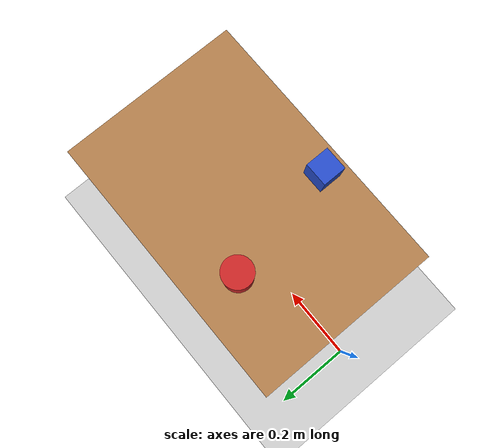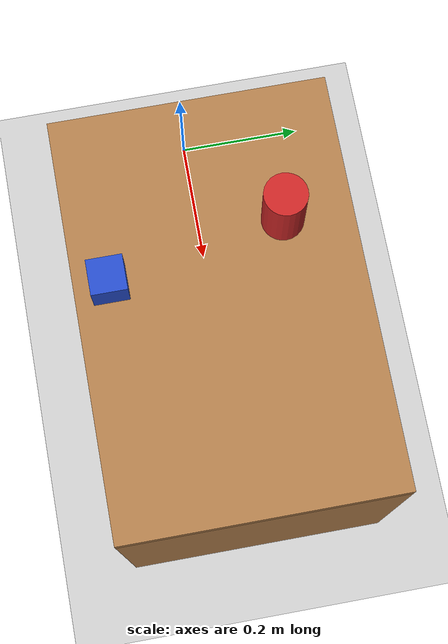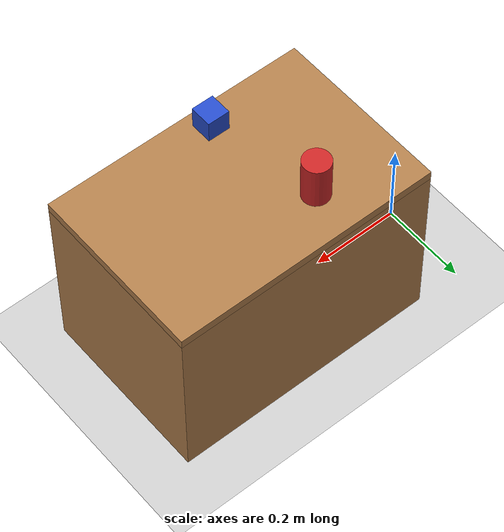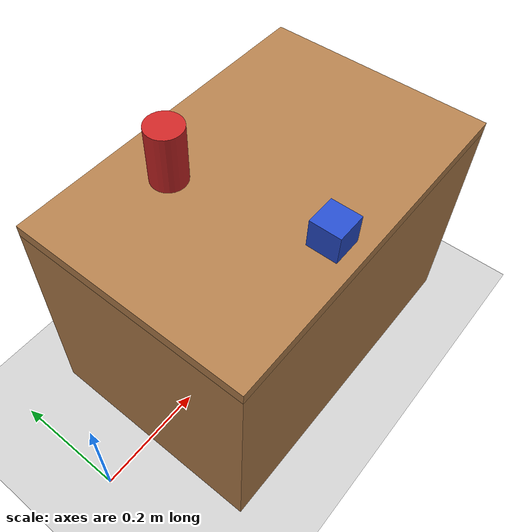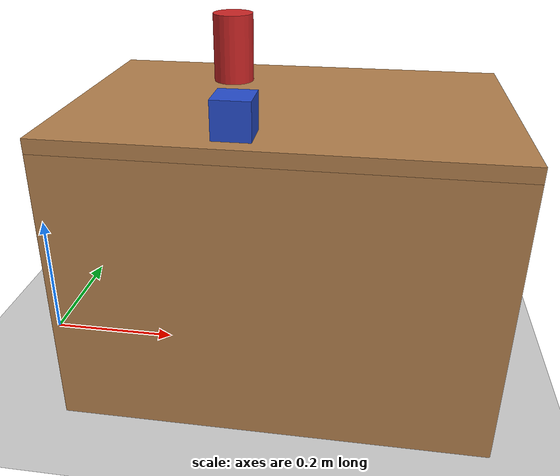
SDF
<?xml version="1.0" ?>
<sdf version="1.6">
  <world name="pick_place_world">

    <!-- Physics settings -->
    <physics name="default_physics" default="0" type="ode">
      <gravity>0 0 -9.8</gravity>
      <ode>
        <solver>
          <type>quick</type>
          <iters>150</iters>
          <sor>1.4</sor>
        </solver>
        <constraints>
          <cfm>1e-5</cfm>
          <erp>0.2</erp>
          <contact_max_correcting_vel>2000</contact_max_correcting_vel>
          <contact_surface_layer>0.01</contact_surface_layer>
        </constraints>
      </ode>
      <real_time_update_rate>1000.0</real_time_update_rate>
      <real_time_factor>1</real_time_factor>
    </physics>

    <!-- Lighting -->
    <light name="sun" type="directional">
      <cast_shadows>true</cast_shadows>
      <pose>0 0 10 0 0 0</pose>
      <diffuse>0.8 0.8 0.8 1</diffuse>
      <specular>0.2 0.2 0.2 1</specular>
      <attenuation>
        <range>1000</range>
        <constant>0.9</constant>
        <linear>0.01</linear>
        <quadratic>0.001</quadratic>
      </attenuation>
      <direction>-0.5 0.1 -0.9</direction>
    </light>

    <!-- Ground plane -->
    <model name="ground_plane">
      <static>true</static>
      <link name="link">
        <collision name="collision">
          <geometry>
            <plane>
              <normal>0 0 1</normal>
              <size>100 100</size>
            </plane>
          </geometry>
          <surface>
            <contact>
              <collide_bitmask>65535</collide_bitmask>
              <ode>
                <mu>100</mu>
                <mu2>50</mu2>
              </ode>
            </contact>
            <friction>
              <ode>
                <mu>100</mu>
                <mu2>50</mu2>
              </ode>
            </friction>
          </surface>
        </collision>
        <visual name="visual">
          <geometry>
            <plane>
              <normal>0 0 1</normal>
              <size>100 100</size>
            </plane>
          </geometry>
          <material>
            <script>
              <uri>file://media/materials/scripts/gazebo.material</uri>
              <name>Gazebo/Grey</name>
            </script>
          </material>
        </visual>
      </link>
    </model>

    <!-- Table -->
    <model name="table">
      <static>true</static>
      <pose>0.4 0.0 0.0 0 0 0</pose>
      <link name="table_link">
        <collision name="table_collision">
          <geometry>
            <box>
              <size>0.6 0.4 0.4</size> <!-- 60cm x 40cm x 40cm high -->
            </box>
          </geometry>
          <pose>0 0 0.2 0 0 0</pose> <!-- Center at 20cm height -->
        </collision>
        <visual name="table_visual">
          <geometry>
            <box>
              <size>0.6 0.4 0.4</size>
            </box>
          </geometry>
          <pose>0 0 0.2 0 0 0</pose>
          <material>
            <script>
              <uri>file://media/materials/scripts/gazebo.material</uri>
              <name>Gazebo/Wood</name>
            </script>
          </material>
        </visual>

        <!-- Table surface (for object placement) -->
        <collision name="surface_collision">
          <geometry>
            <box>
              <size>0.6 0.4 0.02</size>
            </box>
          </geometry>
          <pose>0 0 0.41 0 0 0</pose> <!-- Surface at 41cm -->
          <surface>
            <contact>
              <ode>
                <mu>0.6</mu>
                <mu2>0.6</mu2>
              </ode>
            </contact>
            <friction>
              <ode>
                <mu>0.6</mu>
                <mu2>0.6</mu2>
              </ode>
            </friction>
          </surface>
        </collision>
        <visual name="surface_visual">
          <geometry>
            <box>
              <size>0.6 0.4 0.02</size>
            </box>
          </geometry>
          <pose>0 0 0.41 0 0 0</pose>
          <material>
            <script>
              <uri>file://media/materials/scripts/gazebo.material</uri>
              <name>Gazebo/WoodPallet</name>
            </script>
          </material>
        </visual>
      </link>
    </model>

    <!-- Cylinder object (soda can) -->
    <model name="cylinder_object">
      <pose>0.3 0.1 0.47 0 0 0</pose> <!-- On table surface + half height -->
      <link name="cylinder_link">
        <inertial>
          <mass>0.1</mass>
          <inertia>
            <ixx>0.0004</ixx>
            <iyy>0.0004</iyy>
            <izz>0.0001</izz>
          </inertia>
        </inertial>
        <collision name="cylinder_collision">
          <geometry>
            <cylinder>
              <radius>0.03</radius> <!-- 3cm radius -->
              <length>0.1</length>  <!-- 10cm height -->
            </cylinder>
          </geometry>
          <surface>
            <contact>
              <ode>
                <mu>0.8</mu>
                <mu2>0.8</mu2>
                <kp>1000000</kp>
                <kd>100</kd>
              </ode>
            </contact>
            <friction>
              <ode>
                <mu>0.8</mu>
                <mu2>0.8</mu2>
              </ode>
            </friction>
          </surface>
        </collision>
        <visual name="cylinder_visual">
          <geometry>
            <cylinder>
              <radius>0.03</radius>
              <length>0.1</length>
            </cylinder>
          </geometry>
          <material>
            <script>
              <uri>file://media/materials/scripts/gazebo.material</uri>
              <name>Gazebo/Red</name>
            </script>
          </material>
        </visual>
      </link>
    </model>

    <!-- Cube object (small box) -->
    <model name="cube_object">
      <pose>0.35 -0.15 0.445 0 0 0</pose> <!-- On table surface + half height -->
      <link name="cube_link">
        <inertial>
          <mass>0.08</mass>
          <inertia>
            <ixx>0.0002</ixx>
            <iyy>0.0002</iyy>
            <izz>0.0002</izz>
          </inertia>
        </inertial>
        <collision name="cube_collision">
          <geometry>
            <box>
              <size>0.05 0.05 0.05</size> <!-- 5cm cube -->
            </box>
          </geometry>
          <surface>
            <contact>
              <ode>
                <mu>0.8</mu>
                <mu2>0.8</mu2>
                <kp>1000000</kp>
                <kd>100</kd>
              </ode>
            </contact>
            <friction>
              <ode>
                <mu>0.8</mu>
                <mu2>0.8</mu2>
              </ode>
            </friction>
          </surface>
        </collision>
        <visual name="cube_visual">
          <geometry>
            <box>
              <size>0.05 0.05 0.05</size>
            </box>
          </geometry>
          <material>
            <script>
              <uri>file://media/materials/scripts/gazebo.material</uri>
              <name>Gazebo/Blue</name>
            </script>
          </material>
        </visual>
      </link>
    </model>

    <!-- Scene settings -->
    <scene>
      <ambient>0.4 0.4 0.4 1</ambient>
      <background>0.7 0.7 0.7 1</background>
      <shadows>true</shadows>
    </scene>

    <!-- GUI settings -->
    <gui fullscreen='0'>
      <camera name='user_camera'>
        <pose>1.2 -1.2 1.2 0 0.4 2.4</pose>
        <view_controller>orbit</view_controller>
        <projection_type>perspective</projection_type>
      </camera>
    </gui>

  </world>
</sdf>
